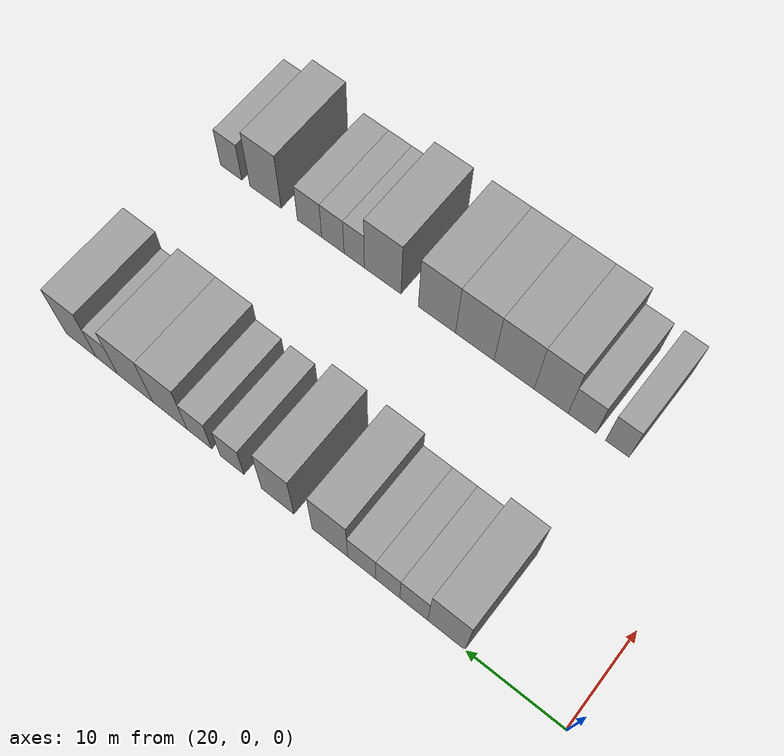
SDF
<sdf version="1.6">
 <world name="default">
  <model name="building_55">
   <static>1</static>
   <pose>25.0000 11.9884 0 0.000000 0.000000 0.000000</pose>
   <link name="link">
    <pose>0 0 4.50 0 0 0</pose>
    <collision name="collision"><geometry><box><size>10.0000 3.8243 9.0000</size></box></geometry></collision>
    <visual name="visual">
     <cast_shadows>0</cast_shadows>
     <geometry><box><size>10.0000 3.8243 9.0000</size></box></geometry>
     <material>
      <script>
       <uri>model://grey_wall/materials/scripts</uri>
       <uri>model://grey_wall/materials/textures</uri>
       <name>vrc/grey_wall</name>
      </script>
     </material>
    </visual>
   </link>
  </model>
  <model name="building_56">
   <static>1</static>
   <pose>25.0000 15.3651 0 0.000000 0.000000 0.000000</pose>
   <link name="link">
    <pose>0 0 3.00 0 0 0</pose>
    <collision name="collision"><geometry><box><size>10.0000 2.9291 6.0000</size></box></geometry></collision>
    <visual name="visual">
     <cast_shadows>0</cast_shadows>
     <geometry><box><size>10.0000 2.9291 6.0000</size></box></geometry>
     <material>
      <script>
       <uri>model://grey_wall/materials/scripts</uri>
       <uri>model://grey_wall/materials/textures</uri>
       <name>vrc/grey_wall</name>
      </script>
     </material>
    </visual>
   </link>
  </model>
  <model name="building_57">
   <static>1</static>
   <pose>25.0000 18.0941 0 0.000000 0.000000 0.000000</pose>
   <link name="link">
    <pose>0 0 3.00 0 0 0</pose>
    <collision name="collision"><geometry><box><size>10.0000 2.5289 6.0000</size></box></geometry></collision>
    <visual name="visual">
     <cast_shadows>0</cast_shadows>
     <geometry><box><size>10.0000 2.5289 6.0000</size></box></geometry>
     <material>
      <script>
       <uri>model://grey_wall/materials/scripts</uri>
       <uri>model://grey_wall/materials/textures</uri>
       <name>vrc/grey_wall</name>
      </script>
     </material>
    </visual>
   </link>
  </model>
  <model name="building_58">
   <static>1</static>
   <pose>25.0000 20.8509 0 0.000000 0.000000 0.000000</pose>
   <link name="link">
    <pose>0 0 3.00 0 0 0</pose>
    <collision name="collision"><geometry><box><size>10.0000 2.9846 6.0000</size></box></geometry></collision>
    <visual name="visual">
     <cast_shadows>0</cast_shadows>
     <geometry><box><size>10.0000 2.9846 6.0000</size></box></geometry>
     <material>
      <script>
       <uri>model://grey_wall/materials/scripts</uri>
       <uri>model://grey_wall/materials/textures</uri>
       <name>vrc/grey_wall</name>
      </script>
     </material>
    </visual>
   </link>
  </model>
  <model name="building_59">
   <static>1</static>
   <pose>25.0000 24.2949 0 0.000000 0.000000 0.000000</pose>
   <link name="link">
    <pose>0 0 4.50 0 0 0</pose>
    <collision name="collision"><geometry><box><size>10.0000 3.9034 9.0000</size></box></geometry></collision>
    <visual name="visual">
     <cast_shadows>0</cast_shadows>
     <geometry><box><size>10.0000 3.9034 9.0000</size></box></geometry>
     <material>
      <script>
       <uri>model://grey_wall/materials/scripts</uri>
       <uri>model://grey_wall/materials/textures</uri>
       <name>vrc/grey_wall</name>
      </script>
     </material>
    </visual>
   </link>
  </model>
  <model name="building_60">
   <static>1</static>
   <pose>25.0000 30.0627 0 0.000000 0.000000 0.000000</pose>
   <link name="link">
    <pose>0 0 4.50 0 0 0</pose>
    <collision name="collision"><geometry><box><size>10.0000 3.6321 9.0000</size></box></geometry></collision>
    <visual name="visual">
     <cast_shadows>0</cast_shadows>
     <geometry><box><size>10.0000 3.6321 9.0000</size></box></geometry>
     <material>
      <script>
       <uri>model://grey_wall/materials/scripts</uri>
       <uri>model://grey_wall/materials/textures</uri>
       <name>vrc/grey_wall</name>
      </script>
     </material>
    </visual>
   </link>
  </model>
  <model name="building_61">
   <static>1</static>
   <pose>25.0000 35.2333 0 0.000000 0.000000 0.000000</pose>
   <link name="link">
    <pose>0 0 3.00 0 0 0</pose>
    <collision name="collision"><geometry><box><size>10.0000 2.7091 6.0000</size></box></geometry></collision>
    <visual name="visual">
     <cast_shadows>0</cast_shadows>
     <geometry><box><size>10.0000 2.7091 6.0000</size></box></geometry>
     <material>
      <script>
       <uri>model://grey_wall/materials/scripts</uri>
       <uri>model://grey_wall/materials/textures</uri>
       <name>vrc/grey_wall</name>
      </script>
     </material>
    </visual>
   </link>
  </model>
  <model name="building_62">
   <static>1</static>
   <pose>25.0000 39.0193 0 0.000000 0.000000 0.000000</pose>
   <link name="link">
    <pose>0 0 3.00 0 0 0</pose>
    <collision name="collision"><geometry><box><size>10.0000 2.8630 6.0000</size></box></geometry></collision>
    <visual name="visual">
     <cast_shadows>0</cast_shadows>
     <geometry><box><size>10.0000 2.8630 6.0000</size></box></geometry>
     <material>
      <script>
       <uri>model://grey_wall/materials/scripts</uri>
       <uri>model://grey_wall/materials/textures</uri>
       <name>vrc/grey_wall</name>
      </script>
     </material>
    </visual>
   </link>
  </model>
  <model name="building_63">
   <static>1</static>
   <pose>25.0000 42.4953 0 0.000000 0.000000 0.000000</pose>
   <link name="link">
    <pose>0 0 4.50 0 0 0</pose>
    <collision name="collision"><geometry><box><size>10.0000 4.0889 9.0000</size></box></geometry></collision>
    <visual name="visual">
     <cast_shadows>0</cast_shadows>
     <geometry><box><size>10.0000 4.0889 9.0000</size></box></geometry>
     <material>
      <script>
       <uri>model://grey_wall/materials/scripts</uri>
       <uri>model://grey_wall/materials/textures</uri>
       <name>vrc/grey_wall</name>
      </script>
     </material>
    </visual>
   </link>
  </model>
  <model name="building_64">
   <static>1</static>
   <pose>25.0000 46.6849 0 0.000000 0.000000 0.000000</pose>
   <link name="link">
    <pose>0 0 4.50 0 0 0</pose>
    <collision name="collision"><geometry><box><size>10.0000 4.2902 9.0000</size></box></geometry></collision>
    <visual name="visual">
     <cast_shadows>0</cast_shadows>
     <geometry><box><size>10.0000 4.2902 9.0000</size></box></geometry>
     <material>
      <script>
       <uri>model://grey_wall/materials/scripts</uri>
       <uri>model://grey_wall/materials/textures</uri>
       <name>vrc/grey_wall</name>
      </script>
     </material>
    </visual>
   </link>
  </model>
  <model name="building_65">
   <static>1</static>
   <pose>25.0000 50.1178 0 0.000000 0.000000 0.000000</pose>
   <link name="link">
    <pose>0 0 3.00 0 0 0</pose>
    <collision name="collision"><geometry><box><size>10.0000 2.5756 6.0000</size></box></geometry></collision>
    <visual name="visual">
     <cast_shadows>0</cast_shadows>
     <geometry><box><size>10.0000 2.5756 6.0000</size></box></geometry>
     <material>
      <script>
       <uri>model://grey_wall/materials/scripts</uri>
       <uri>model://grey_wall/materials/textures</uri>
       <name>vrc/grey_wall</name>
      </script>
     </material>
    </visual>
   </link>
  </model>
  <model name="building_66">
   <static>1</static>
   <pose>25.0000 53.2876 0 0.000000 0.000000 0.000000</pose>
   <link name="link">
    <pose>0 0 4.50 0 0 0</pose>
    <collision name="collision"><geometry><box><size>10.0000 3.7640 9.0000</size></box></geometry></collision>
    <visual name="visual">
     <cast_shadows>0</cast_shadows>
     <geometry><box><size>10.0000 3.7640 9.0000</size></box></geometry>
     <material>
      <script>
       <uri>model://grey_wall/materials/scripts</uri>
       <uri>model://grey_wall/materials/textures</uri>
       <name>vrc/grey_wall</name>
      </script>
     </material>
    </visual>
   </link>
  </model>
  <model name="building_146">
   <static>1</static>
   <pose>47.0000 10.0903 0 0.000000 0.000000 0.000000</pose>
   <link name="link">
    <pose>0 0 3.00 0 0 0</pose>
    <collision name="collision"><geometry><box><size>10.0000 2.4713 6.0000</size></box></geometry></collision>
    <visual name="visual">
     <cast_shadows>0</cast_shadows>
     <geometry><box><size>10.0000 2.4713 6.0000</size></box></geometry>
     <material>
      <script>
       <uri>model://grey_wall/materials/scripts</uri>
       <uri>model://grey_wall/materials/textures</uri>
       <name>vrc/grey_wall</name>
      </script>
     </material>
    </visual>
   </link>
  </model>
  <model name="building_147">
   <static>1</static>
   <pose>47.0000 13.8059 0 0.000000 0.000000 0.000000</pose>
   <link name="link">
    <pose>0 0 3.00 0 0 0</pose>
    <collision name="collision"><geometry><box><size>10.0000 2.9600 6.0000</size></box></geometry></collision>
    <visual name="visual">
     <cast_shadows>0</cast_shadows>
     <geometry><box><size>10.0000 2.9600 6.0000</size></box></geometry>
     <material>
      <script>
       <uri>model://grey_wall/materials/scripts</uri>
       <uri>model://grey_wall/materials/textures</uri>
       <name>vrc/grey_wall</name>
      </script>
     </material>
    </visual>
   </link>
  </model>
  <model name="building_148">
   <static>1</static>
   <pose>47.0000 17.1363 0 0.000000 0.000000 0.000000</pose>
   <link name="link">
    <pose>0 0 4.50 0 0 0</pose>
    <collision name="collision"><geometry><box><size>10.0000 3.7008 9.0000</size></box></geometry></collision>
    <visual name="visual">
     <cast_shadows>0</cast_shadows>
     <geometry><box><size>10.0000 3.7008 9.0000</size></box></geometry>
     <material>
      <script>
       <uri>model://grey_wall/materials/scripts</uri>
       <uri>model://grey_wall/materials/textures</uri>
       <name>vrc/grey_wall</name>
      </script>
     </material>
    </visual>
   </link>
  </model>
  <model name="building_149">
   <static>1</static>
   <pose>47.0000 21.1923 0 0.000000 0.000000 0.000000</pose>
   <link name="link">
    <pose>0 0 4.50 0 0 0</pose>
    <collision name="collision"><geometry><box><size>10.0000 4.4111 9.0000</size></box></geometry></collision>
    <visual name="visual">
     <cast_shadows>0</cast_shadows>
     <geometry><box><size>10.0000 4.4111 9.0000</size></box></geometry>
     <material>
      <script>
       <uri>model://grey_wall/materials/scripts</uri>
       <uri>model://grey_wall/materials/textures</uri>
       <name>vrc/grey_wall</name>
      </script>
     </material>
    </visual>
   </link>
  </model>
  <model name="building_150">
   <static>1</static>
   <pose>47.0000 25.5608 0 0.000000 0.000000 0.000000</pose>
   <link name="link">
    <pose>0 0 4.50 0 0 0</pose>
    <collision name="collision"><geometry><box><size>10.0000 4.3260 9.0000</size></box></geometry></collision>
    <visual name="visual">
     <cast_shadows>0</cast_shadows>
     <geometry><box><size>10.0000 4.3260 9.0000</size></box></geometry>
     <material>
      <script>
       <uri>model://grey_wall/materials/scripts</uri>
       <uri>model://grey_wall/materials/textures</uri>
       <name>vrc/grey_wall</name>
      </script>
     </material>
    </visual>
   </link>
  </model>
  <model name="building_151">
   <static>1</static>
   <pose>47.0000 29.8571 0 0.000000 0.000000 0.000000</pose>
   <link name="link">
    <pose>0 0 4.50 0 0 0</pose>
    <collision name="collision"><geometry><box><size>10.0000 4.2666 9.0000</size></box></geometry></collision>
    <visual name="visual">
     <cast_shadows>0</cast_shadows>
     <geometry><box><size>10.0000 4.2666 9.0000</size></box></geometry>
     <material>
      <script>
       <uri>model://grey_wall/materials/scripts</uri>
       <uri>model://grey_wall/materials/textures</uri>
       <name>vrc/grey_wall</name>
      </script>
     </material>
    </visual>
   </link>
  </model>
  <model name="building_152">
   <static>1</static>
   <pose>47.0000 36.1417 0 0.000000 0.000000 0.000000</pose>
   <link name="link">
    <pose>0 0 4.50 0 0 0</pose>
    <collision name="collision"><geometry><box><size>10.0000 4.3026 9.0000</size></box></geometry></collision>
    <visual name="visual">
     <cast_shadows>0</cast_shadows>
     <geometry><box><size>10.0000 4.3026 9.0000</size></box></geometry>
     <material>
      <script>
       <uri>model://grey_wall/materials/scripts</uri>
       <uri>model://grey_wall/materials/textures</uri>
       <name>vrc/grey_wall</name>
      </script>
     </material>
    </visual>
   </link>
  </model>
  <model name="building_153">
   <static>1</static>
   <pose>47.0000 39.5117 0 0.000000 0.000000 0.000000</pose>
   <link name="link">
    <pose>0 0 3.00 0 0 0</pose>
    <collision name="collision"><geometry><box><size>10.0000 2.4375 6.0000</size></box></geometry></collision>
    <visual name="visual">
     <cast_shadows>0</cast_shadows>
     <geometry><box><size>10.0000 2.4375 6.0000</size></box></geometry>
     <material>
      <script>
       <uri>model://grey_wall/materials/scripts</uri>
       <uri>model://grey_wall/materials/textures</uri>
       <name>vrc/grey_wall</name>
      </script>
     </material>
    </visual>
   </link>
  </model>
  <model name="building_154">
   <static>1</static>
   <pose>47.0000 42.0755 0 0.000000 0.000000 0.000000</pose>
   <link name="link">
    <pose>0 0 3.00 0 0 0</pose>
    <collision name="collision"><geometry><box><size>10.0000 2.6901 6.0000</size></box></geometry></collision>
    <visual name="visual">
     <cast_shadows>0</cast_shadows>
     <geometry><box><size>10.0000 2.6901 6.0000</size></box></geometry>
     <material>
      <script>
       <uri>model://grey_wall/materials/scripts</uri>
       <uri>model://grey_wall/materials/textures</uri>
       <name>vrc/grey_wall</name>
      </script>
     </material>
    </visual>
   </link>
  </model>
  <model name="building_155">
   <static>1</static>
   <pose>47.0000 44.9112 0 0.000000 0.000000 0.000000</pose>
   <link name="link">
    <pose>0 0 3.00 0 0 0</pose>
    <collision name="collision"><geometry><box><size>10.0000 2.9812 6.0000</size></box></geometry></collision>
    <visual name="visual">
     <cast_shadows>0</cast_shadows>
     <geometry><box><size>10.0000 2.9812 6.0000</size></box></geometry>
     <material>
      <script>
       <uri>model://grey_wall/materials/scripts</uri>
       <uri>model://grey_wall/materials/textures</uri>
       <name>vrc/grey_wall</name>
      </script>
     </material>
    </visual>
   </link>
  </model>
  <model name="building_156">
   <static>1</static>
   <pose>47.0000 50.3616 0 0.000000 0.000000 0.000000</pose>
   <link name="link">
    <pose>0 0 4.50 0 0 0</pose>
    <collision name="collision"><geometry><box><size>10.0000 3.9195 9.0000</size></box></geometry></collision>
    <visual name="visual">
     <cast_shadows>0</cast_shadows>
     <geometry><box><size>10.0000 3.9195 9.0000</size></box></geometry>
     <material>
      <script>
       <uri>model://grey_wall/materials/scripts</uri>
       <uri>model://grey_wall/materials/textures</uri>
       <name>vrc/grey_wall</name>
      </script>
     </material>
    </visual>
   </link>
  </model>
  <model name="building_157">
   <static>1</static>
   <pose>47.0000 54.6800 0 0.000000 0.000000 0.000000</pose>
   <link name="link">
    <pose>0 0 3.00 0 0 0</pose>
    <collision name="collision"><geometry><box><size>10.0000 2.7173 6.0000</size></box></geometry></collision>
    <visual name="visual">
     <cast_shadows>0</cast_shadows>
     <geometry><box><size>10.0000 2.7173 6.0000</size></box></geometry>
     <material>
      <script>
       <uri>model://grey_wall/materials/scripts</uri>
       <uri>model://grey_wall/materials/textures</uri>
       <name>vrc/grey_wall</name>
      </script>
     </material>
    </visual>
   </link>
  </model>
 </world>
</sdf>
